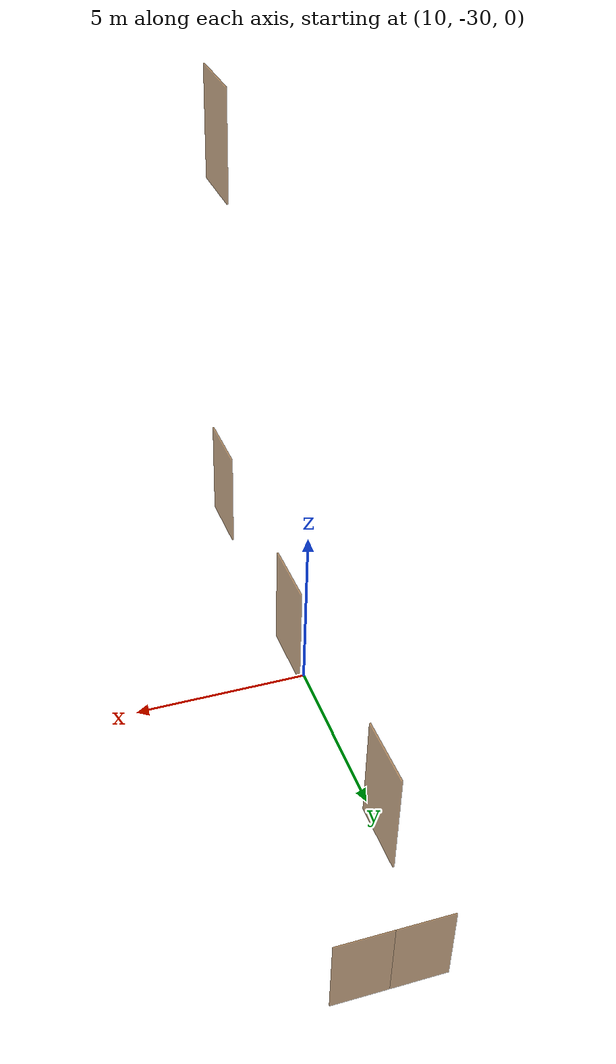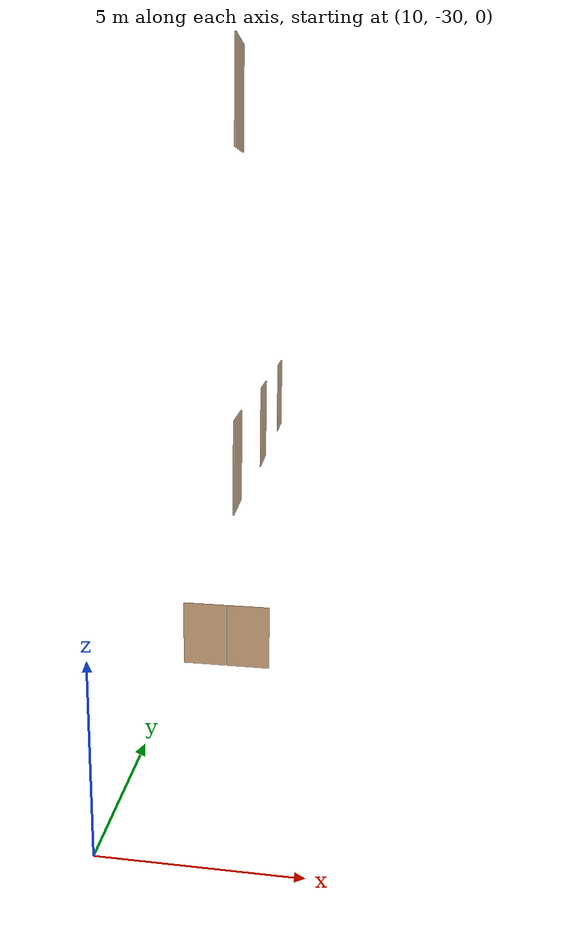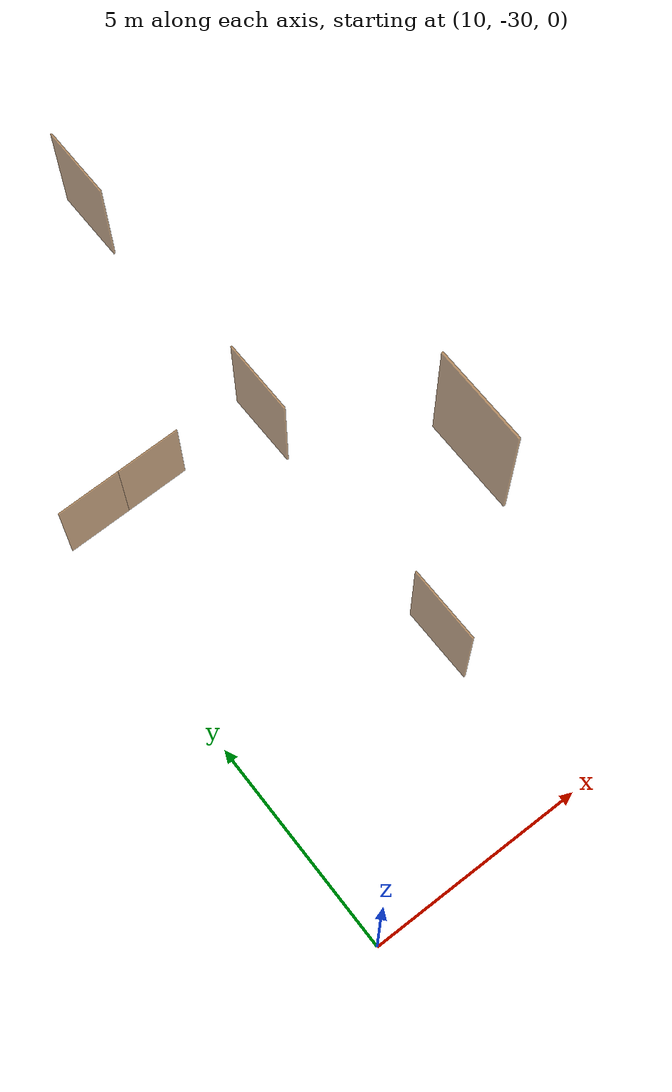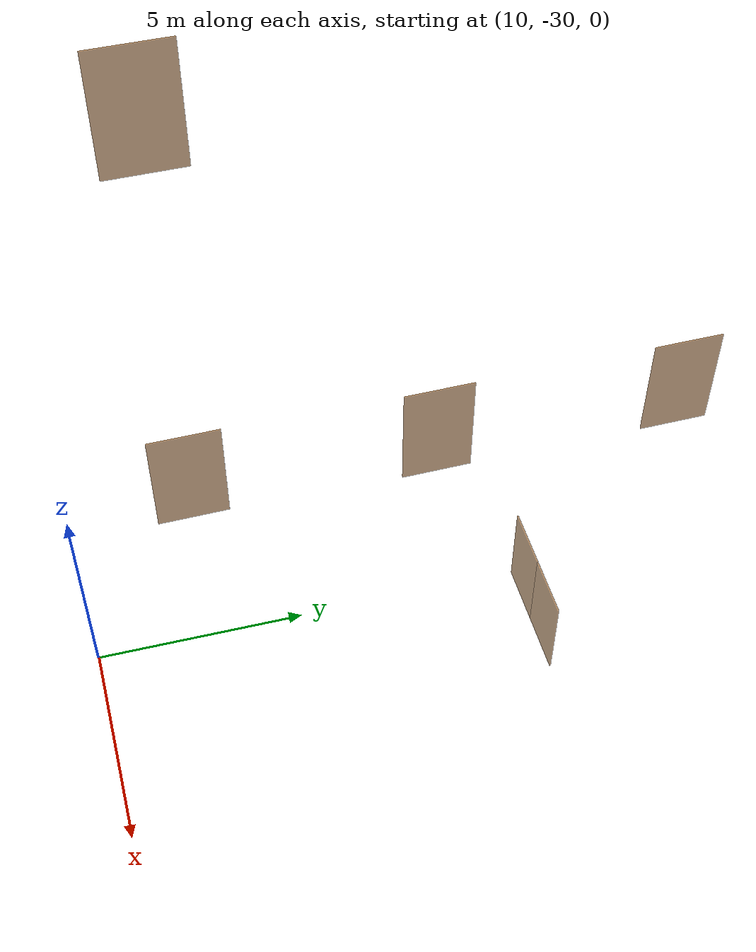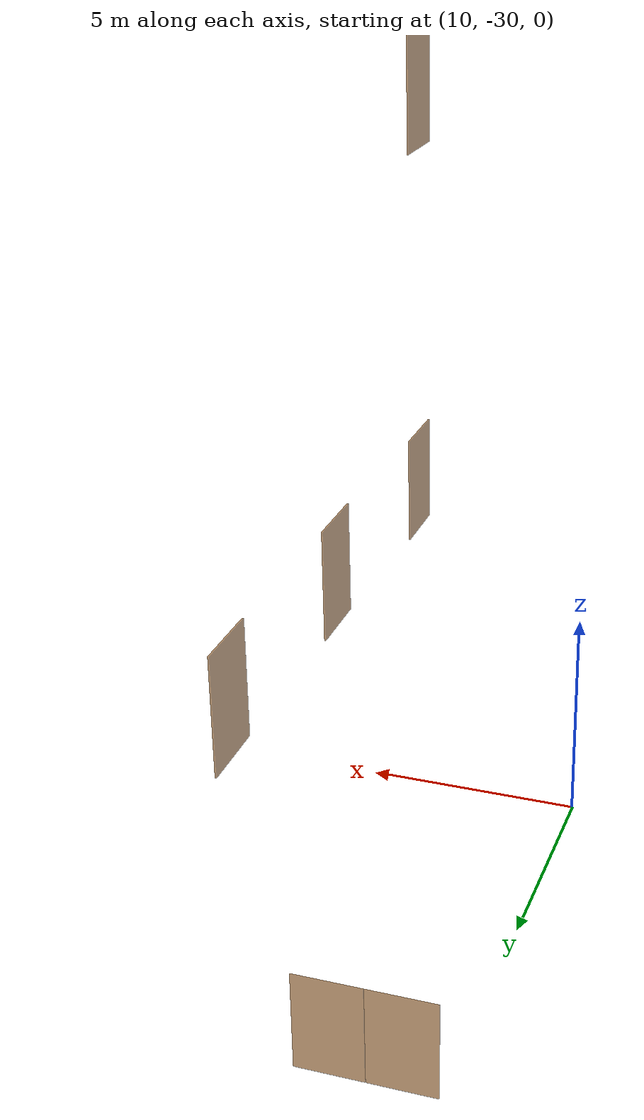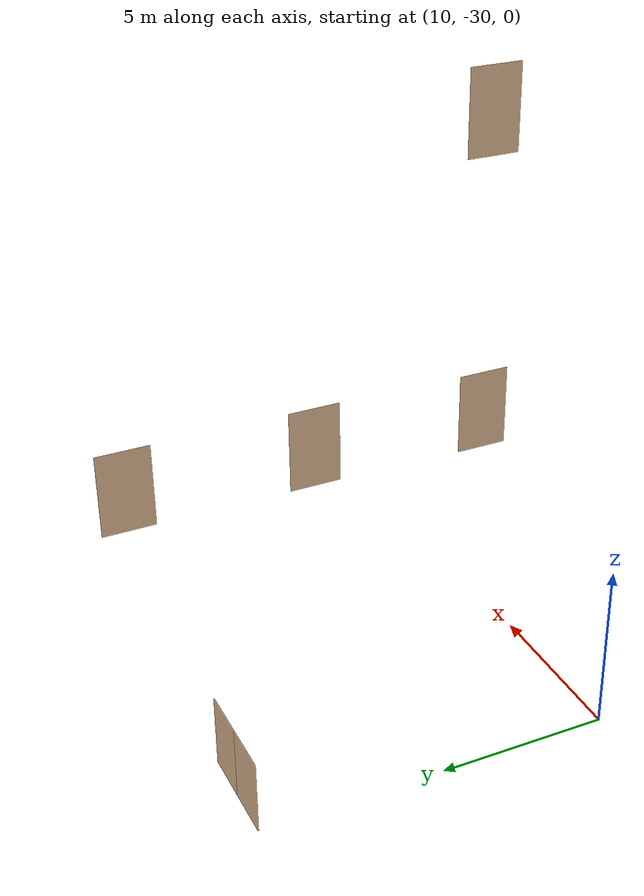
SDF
<sdf version="1.7">
 <world name="world">
  <include><uri>model://sun</uri></include>
  <model name="L1_door2">
   <pose>11.515053553551752 -19.600764056030513 0.0 0 0 -3.1369488994516814</pose>
   <link name="right">
    <pose>0.7374085791900343 0 1.11 0 0 0</pose>
    <visual name="right_visual">
     <geometry><box><size>1.4648171583800687 0.03 2.2</size></box></geometry>
     <material><ambient>0.5 0.25 0 0.6</ambient><diffuse>0.5 0.25 0 0.6</diffuse></material>
    </visual>
    <collision name="right_collision">
     <geometry><box><size>1.4648171583800687 0.03 2.2</size></box></geometry>
     <surface><contact><collide_bitmask>0x02</collide_bitmask></contact></surface>
    </collision>
    <inertial>
     <mass>50.0</mass>
     <inertia><ixx>20.17041666666667</ixx><iyy>29.107038781186084</iyy><izz>8.944122114519415</izz></inertia>
    </inertial>
   </link>
   <joint name="right_joint" type="prismatic">
    <parent>world</parent>
    <child>right</child>
    <axis>
     <xyz>1 0 0</xyz>
     <limit><lower>0.0</lower><upper>1.4748171583800687</upper><effort>500.0</effort></limit>
    </axis>
   </joint>
   <link name="left">
    <pose>-0.7374085791900343 0 1.11 0 0 0</pose>
    <visual name="left_visual">
     <geometry><box><size>1.4648171583800687 0.03 2.2</size></box></geometry>
     <material><ambient>0.5 0.25 0 0.6</ambient><diffuse>0.5 0.25 0 0.6</diffuse></material>
    </visual>
    <collision name="left_collision">
     <geometry><box><size>1.4648171583800687 0.03 2.2</size></box></geometry>
     <surface><contact><collide_bitmask>0x02</collide_bitmask></contact></surface>
    </collision>
    <inertial>
     <mass>50.0</mass>
     <inertia><ixx>20.17041666666667</ixx><iyy>29.107038781186084</iyy><izz>8.944122114519415</izz></inertia>
    </inertial>
   </link>
   <joint name="left_joint" type="prismatic">
    <parent>world</parent>
    <child>left</child>
    <axis>
     <xyz>1 0 0</xyz>
     <limit><lower>-1.4748171583800687</lower><upper>0.0</upper><effort>500.0</effort></limit>
    </axis>
   </joint>
  </model>
  <model name="L2_door7">
   <pose>13.018848337594756 -27.49809116 8.0 0 0 1.5874688733681936</pose>
   <link name="right">
    <pose>0 0 1.11 0 0 0</pose>
    <visual name="right_visual">
     <geometry><box><size>1.382945881897145 0.03 2.2</size></box></geometry>
     <material><ambient>0.5 0.25 0 0.6</ambient><diffuse>0.5 0.25 0 0.6</diffuse></material>
    </visual>
    <collision name="right_collision">
     <geometry><box><size>1.382945881897145 0.03 2.2</size></box></geometry>
     <surface><contact><collide_bitmask>0x02</collide_bitmask></contact></surface>
    </collision>
    <inertial>
     <mass>50.0</mass>
     <inertia><ixx>20.17041666666667</ixx><iyy>28.13558046773447</iyy><izz>7.9726638010677995</izz></inertia>
    </inertial>
   </link>
   <joint name="right_joint" type="revolute">
    <parent>world</parent>
    <child>right</child>
    <axis><xyz>0 0 -1</xyz><limit><lower>0</lower><upper>1.57</upper></limit></axis>
    <pose>0.6964729409485725 0 0 0 0 0</pose>
   </joint>
  </model>
  <model name="L2_door8">
   <pose>13.05848337594756 -22.704836665 8.0 0 0 1.5874688733681936</pose>
   <link name="right">
    <pose>0 0 1.11 0 0 0</pose>
    <visual name="right_visual">
     <geometry><box><size>1.382945881897145 0.03 2.2</size></box></geometry>
     <material><ambient>0.5 0.25 0 0.6</ambient><diffuse>0.5 0.25 0 0.6</diffuse></material>
    </visual>
    <collision name="right_collision">
     <geometry><box><size>1.382945881897145 0.03 2.2</size></box></geometry>
     <surface><contact><collide_bitmask>0x02</collide_bitmask></contact></surface>
    </collision>
    <inertial>
     <mass>50.0</mass>
     <inertia><ixx>20.17041666666667</ixx><iyy>28.13558046773447</iyy><izz>7.9726638010677995</izz></inertia>
    </inertial>
   </link>
   <joint name="right_joint" type="revolute">
    <parent>world</parent>
    <child>right</child>
    <axis><xyz>0 0 -1</xyz><limit><lower>0</lower><upper>1.57</upper></limit></axis>
    <pose>0.6964729409485725 0 0 0 0 0</pose>
   </joint>
  </model>
  <model name="L2_door9">
   <pose>13.018848337594756 -17.76158217016259 8.0 0 0 1.5874688733681936</pose>
   <link name="right">
    <pose>0 0 1.11 0 0 0</pose>
    <visual name="right_visual">
     <geometry><box><size>1.382945881897145 0.03 2.2</size></box></geometry>
     <material><ambient>0.5 0.25 0 0.6</ambient><diffuse>0.5 0.25 0 0.6</diffuse></material>
    </visual>
    <collision name="right_collision">
     <geometry><box><size>1.382945881897145 0.03 2.2</size></box></geometry>
     <surface><contact><collide_bitmask>0x02</collide_bitmask></contact></surface>
    </collision>
    <inertial>
     <mass>50.0</mass>
     <inertia><ixx>20.17041666666667</ixx><iyy>28.13558046773447</iyy><izz>7.9726638010677995</izz></inertia>
    </inertial>
   </link>
   <joint name="right_joint" type="revolute">
    <parent>world</parent>
    <child>right</child>
    <axis><xyz>0 0 -1</xyz><limit><lower>0</lower><upper>1.57</upper></limit></axis>
    <pose>0.6964729409485725 0 0 0 0 0</pose>
   </joint>
  </model>
  <model name="L3_door7">
   <pose>13.018848337594756 -27.49809116 16.0 0 0 1.5874688733681936</pose>
   <link name="right">
    <pose>0 0 1.11 0 0 0</pose>
    <visual name="right_visual">
     <geometry><box><size>1.382945881897145 0.03 2.2</size></box></geometry>
     <material><ambient>0.5 0.25 0 0.6</ambient><diffuse>0.5 0.25 0 0.6</diffuse></material>
    </visual>
    <collision name="right_collision">
     <geometry><box><size>1.382945881897145 0.03 2.2</size></box></geometry>
     <surface><contact><collide_bitmask>0x02</collide_bitmask></contact></surface>
    </collision>
    <inertial>
     <mass>50.0</mass>
     <inertia><ixx>20.17041666666667</ixx><iyy>28.13558046773447</iyy><izz>7.9726638010677995</izz></inertia>
    </inertial>
   </link>
   <joint name="right_joint" type="revolute">
    <parent>world</parent>
    <child>right</child>
    <axis><xyz>0 0 -1</xyz><limit><lower>0</lower><upper>1.57</upper></limit></axis>
    <pose>0.6964729409485725 0 0 0 0 0</pose>
   </joint>
  </model>
 </world>
</sdf>
